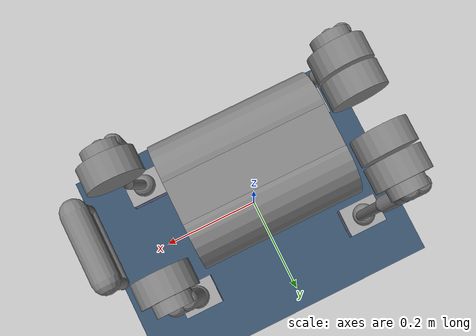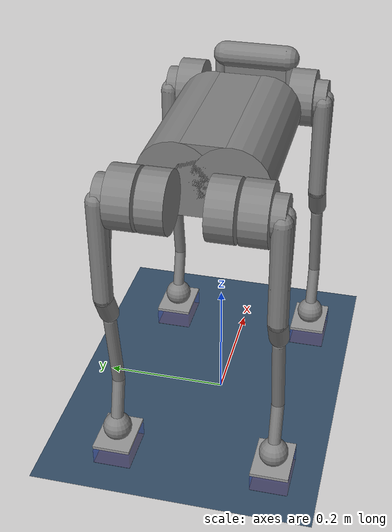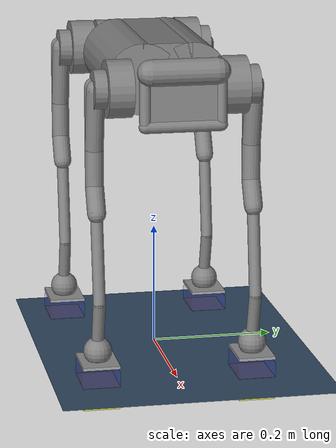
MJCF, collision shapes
<?xml version='1.0' encoding='utf-8'?>
<mujoco model="go1">
  <compiler angle="radian" meshdir="assets" autolimits="true" />

  <option timestep="0.002" solver="PGS" iterations="50" />

  <default>
    <default class="go1">
      <!-- global defaults -->
      <geom friction="0.6 0.01 0.001" margin="0.001" condim="1" />
      <joint axis="0 1 0" damping="2" armature="0.01" frictionloss="0.2" />
      <!-- slightly softer while stabilizing -->
      <position kp="70" forcerange="-23.7 23.7" />

      <!-- abduction/hip/knee joint ranges -->
      <default class="abduction">
        <joint axis="1 0 0" damping="1" range="-0.863 0.863" />
        <position ctrlrange="-0.863 0.863" />
      </default>
      <default class="hip">
        <joint range="-0.686 4.501" />
        <position ctrlrange="-0.686 4.501" />
      </default>
      <default class="knee">
        <joint range="-2.818 -0.888" />
        <position forcerange="-35.55 35.55" ctrlrange="-2.818 -0.888" />
      </default>

      <!-- purely visual meshes: never collide -->
      <default class="visual">
        <geom type="mesh" contype="0" conaffinity="0" group="2" material="dark" />
      </default>

      <!-- collision templates; we will explicitly disable collisions for legs/hips below -->
      <default class="collision">
        <geom group="3" type="capsule" />
        <!-- hip cylinders (set to NO COLLISION) -->
        <default class="hip_left1">
          <geom size="0.046 0.02" pos="0 0.045 0" quat="1 1 0 0" type="cylinder" contype="0" conaffinity="0"/>
        </default>
        <default class="hip_left2">
          <geom size="0.031 0.02" pos="0 0.065 0" quat="1 1 0 0" type="cylinder" contype="0" conaffinity="0"/>
        </default>
        <default class="hip_left3">
          <geom size="0.046 0.02" quat="1 1 0 0" type="cylinder" contype="0" conaffinity="0"/>
        </default>
        <default class="hip_right1">
          <geom size="0.046 0.02" pos="0 -0.045 0" quat="1 1 0 0" type="cylinder" contype="0" conaffinity="0"/>
        </default>
        <default class="hip_right2">
          <geom size="0.031 0.02" pos="0 -0.065 0" quat="1 1 0 0" type="cylinder" contype="0" conaffinity="0"/>
        </default>
        <default class="hip_right3">
          <geom size="0.046 0.02" quat="1 1 0 0" type="cylinder" contype="0" conaffinity="0"/>
        </default>

        <!-- thigh and calf capsules (set to NO COLLISION) -->
        <default class="thigh1">
          <geom size="0.015" fromto="-0.02 0 0 -0.02 0 -0.16" contype="0" conaffinity="0"/>
        </default>
        <default class="thigh2">
          <geom size="0.015" fromto="0 0 0 -0.02 0 -0.1" contype="0" conaffinity="0"/>
        </default>
        <default class="thigh3">
          <geom size="0.015" fromto="-0.02 0 -0.16 0 0 -0.2" contype="0" conaffinity="0"/>
        </default>
        <default class="calf1">
          <geom size="0.01" fromto="0 0 0 0.02 0 -0.13" contype="0" conaffinity="0"/>
        </default>
        <default class="calf2">
          <geom size="0.01" fromto="0.02 0 -0.13 0 0 -0.2" contype="0" conaffinity="0"/>
        </default>

        <!-- legacy foot spheres (disable, shoes handle contact) -->
        <default class="foot">
          <geom type="sphere" size="0.023" pos="0 0 -0.213" priority="1"
                solimp="0.015 1 0.023" condim="6" friction="0.8 0.02 0.01"
                contype="0" conaffinity="0"/>
        </default>
      </default>
    </default>
  </default>

  <asset>
    <material name="dark" rgba="0.2 0.2 0.2 1" />
    <mesh class="go1" file="trunk.stl" />
    <mesh class="go1" file="hip.stl" />
    <mesh class="go1" file="thigh_mirror.stl" />
    <mesh class="go1" file="calf.stl" />
    <mesh class="go1" file="thigh.stl" />
  </asset>

  <worldbody>
    <geom name="floor" type="plane" size="10 10 0.1" rgba="0.2 0.3 0.4 1"
          friction="1.0 0.005 0.0001" />
    <light name="spotlight" mode="targetbodycom" target="trunk" pos="0 -1 2" />

    <body name="trunk" pos="0 0 0.475" childclass="go1">
      <camera name="tracking" mode="trackcom" pos="0 -1 0.8" xyaxes="1 0 0 0 1 1" />
      <site name="head" pos="0.3 0 0" rgba="1 0 0 1" size="0.02" group="5" />
      <inertial pos="0.0223 0.002 -0.0005"
                quat="-0.00342088 0.705204 0.000106698 0.708996"
                mass="5.204" diaginertia="0.0716565 0.0630105 0.0168101" />
      <freejoint />
      <geom class="visual" mesh="trunk" />

      <!-- trunk helper collision geoms: DISABLED to avoid ground scuffs -->
      <geom class="collision" size="0.125 0.04 0.057" type="box" contype="0" conaffinity="0"/>
      <geom class="collision" quat="1 0 1 0" pos="0 -0.04 0" size="0.058 0.125" type="cylinder" contype="0" conaffinity="0"/>
      <geom class="collision" quat="1 0 1 0" pos="0 +0.04 0" size="0.058 0.125" type="cylinder" contype="0" conaffinity="0"/>
      <geom class="collision" pos="0.25 0 0" size="0.005 0.06 0.05" type="box" contype="0" conaffinity="0"/>
      <geom class="collision" pos="0.25 0.06 -0.01" size="0.009 0.035" contype="0" conaffinity="0"/>
      <geom class="collision" pos="0.25 -0.06 -0.01" size="0.009 0.035" contype="0" conaffinity="0"/>
      <geom class="collision" pos="0.25 0 -0.05" size="0.01 0.06" quat="1 1 0 0" contype="0" conaffinity="0"/>
      <geom class="collision" pos="0.255 0 0.0355" size="0.021 0.052" quat="1 1 0 0" contype="0" conaffinity="0"/>
      <site name="imu" pos="0 0 0" />

      <!-- =================== FRONT RIGHT =================== -->
      <body name="FR_hip" pos="0.1881 -0.04675 0">
        <inertial pos="-0.0049166 0.00762615 -8.865e-05"
                  quat="0.507341 0.514169 0.495027 0.482891"
                  mass="0.68" diaginertia="0.000734064 0.000468438 0.000398719" />
        <joint class="abduction" name="FR_hip_joint" />
        <geom class="visual" mesh="hip" quat="1 0 0 0" />
        <geom class="hip_right1" />
        <geom class="hip_right2" />

        <body name="FR_thigh" pos="0 -0.08 0">
          <inertial pos="-0.00304722 0.019315 -0.0305004"
                    quat="0.65243 -0.0272313 0.0775126 0.753383"
                    mass="1.009" diaginertia="0.00478717 0.00460903 0.000709268" />
          <joint class="hip" name="FR_thigh_joint" />
          <geom class="visual" mesh="thigh_mirror" />
          <geom class="thigh1" />
          <geom class="thigh2" />
          <geom class="thigh3" />

          <body name="FR_calf" pos="0 0 -0.213">
            <inertial pos="0.00429862 0.000976676 -0.146197"
                      quat="0.691246 0.00357467 0.00511118 0.722592"
                      mass="0.195862" diaginertia="0.00149767 0.00148468 3.58427e-05" />
            <joint class="knee" name="FR_calf_joint" />
            <geom class="visual" mesh="calf" />
            <geom class="calf1" />
            <geom class="calf2" />
            <geom name="FR" class="foot" />
            <site name="FR_1" pos="0 0 -0.213" type="sphere" size="0.023" group="5" />

            <body name="FR_shoe" pos="0.0000 0.0000 -0.213">
              <body pos="0 0 0.005">
                <joint name="FR_tpu_slide" type="slide" axis="0 0 1"
                       range="-0.002 0" stiffness="5000" damping="80" />
                <geom name="FR_tpu" type="box" size="0.04 0.03 0.0025" pos="0 0 -0.0225"
                      rgba="0.6 0.6 0.6 1" friction="0.9 0.01 0.001"
                      solimp="0.95 0.99 0.001" solref="0.005 1" />
              </body>
              <!-- air-gap: visual only -->
              <geom name="FR_airgap" type="box" size="0.04 0.03 0.0125" pos="0 0 -0.0375"
                    rgba="0.2 0.2 1 0.1" contype="0" conaffinity="0" />
              <!-- FOAM: low-stiff pad that MAY contact -->
              <geom name="FR_foam" type="box" size="0.04 0.03 0.012" pos="0 0 -0.0615"
                    rgba="0.3 0.3 0.3 1" friction="0.8 0.005 0.001"
                    solimp="0.93 0.995 0.001" solref="0.006 1" condim="6" />
              <!-- SILICONE: main contact surface -->
              <geom name="FR_silicone" type="box" size="0.04 0.03 0.005" pos="0 0 -0.0815"
                    rgba="0.8 0.8 0.2 1" friction="1.2 0.01 0.002"
                    solimp="0.95 0.99 0.001" solref="0.004 1" condim="6" />
            </body>
          </body>
        </body>
      </body>

      <!-- =================== FRONT LEFT =================== -->
      <body name="FL_hip" pos="0.1881 0.04675 0">
        <inertial pos="-0.0049166 -0.00762615 -8.865e-05"
                  quat="0.482891 0.495027 0.514169 0.507341"
                  mass="0.68" diaginertia="0.000734064 0.000468438 0.000398719" />
        <joint class="abduction" name="FL_hip_joint" />
        <geom class="visual" mesh="hip" />
        <geom class="hip_left1" />
        <geom class="hip_left2" />

        <body name="FL_thigh" pos="0 0.08 0">
          <inertial pos="-0.00304722 -0.019315 -0.0305004"
                    quat="0.753383 0.0775126 -0.0272313 0.65243"
                    mass="1.009" diaginertia="0.00478717 0.00460903 0.000709268" />
          <joint class="hip" name="FL_thigh_joint" />
          <geom class="visual" mesh="thigh" />
          <geom class="thigh1" />
          <geom class="thigh2" />
          <geom class="thigh3" />

          <body name="FL_calf" pos="0 0 -0.213">
            <inertial pos="0.00429862 0.000976676 -0.146197"
                      quat="0.691246 0.00357467 0.00511118 0.722592"
                      mass="0.195862" diaginertia="0.00149767 0.00148468 3.58427e-05" />
            <joint class="knee" name="FL_calf_joint" />
            <geom class="visual" mesh="calf" />
            <geom class="calf1" />
            <geom class="calf2" />
            <geom name="FL" class="foot" />
            <site name="FL_1" pos="0 0 -0.213" type="sphere" size="0.023" group="5" />

            <body name="FL_shoe" pos="0.0000 0.0000 -0.213">
              <body pos="0 0 0.005">
                <joint name="FL_tpu_slide" type="slide" axis="0 0 1"
                       range="-0.002 0" stiffness="5000" damping="80" />
                <geom name="FL_tpu" type="box" size="0.04 0.03 0.0025" pos="0 0 -0.0225"
                      rgba="0.6 0.6 0.6 1" friction="0.9 0.01 0.001"
                      solimp="0.95 0.99 0.001" solref="0.005 1" />
              </body>
              <geom name="FL_airgap" type="box" size="0.04 0.03 0.0125" pos="0 0 -0.0375"
                    rgba="0.2 0.2 1 0.1" contype="0" conaffinity="0" />
              <geom name="FL_foam" type="box" size="0.04 0.03 0.012" pos="0 0 -0.0615"
                    rgba="0.3 0.3 0.3 1" friction="0.8 0.005 0.001"
                    solimp="0.93 0.995 0.001" solref="0.006 1" condim="6" />
              <geom name="FL_silicone" type="box" size="0.04 0.03 0.005" pos="0 0 -0.0815"
                    rgba="0.8 0.8 0.2 1" friction="1.2 0.01 0.002"
                    solimp="0.95 0.99 0.001" solref="0.004 1" condim="6" />
            </body>
          </body>
        </body>
      </body>

      <!-- =================== REAR RIGHT =================== -->
      <body name="RR_hip" pos="-0.1881 -0.04675 0">
        <inertial pos="0.0049166 0.00762615 -8.865e-05"
                  quat="0.495027 0.482891 0.507341 0.514169"
                  mass="0.68" diaginertia="0.000734064 0.000468438 0.000398719" />
        <joint class="abduction" name="RR_hip_joint" />
        <geom class="visual" quat="0 0 0 -1" mesh="hip" />
        <geom class="hip_right1" />
        <geom class="hip_right2" />
        <geom class="hip_right3" />

        <body name="RR_thigh" pos="0 -0.08 0">
          <inertial pos="-0.00304722 0.019315 -0.0305004"
                    quat="0.65243 -0.0272313 0.0775126 0.753383"
                    mass="1.009" diaginertia="0.00478717 0.00460903 0.000709268" />
          <joint class="hip" name="RR_thigh_joint" />
          <geom class="visual" mesh="thigh_mirror" />
          <geom class="thigh1" />
          <geom class="thigh2" />
          <geom class="thigh3" />

          <body name="RR_calf" pos="0 0 -0.213">
            <inertial pos="0.00429862 0.000976676 -0.146197"
                      quat="0.691246 0.00357467 0.00511118 0.722592"
                      mass="0.195862" diaginertia="0.00149767 0.00148468 3.58427e-05" />
            <joint class="knee" name="RR_calf_joint" />
            <geom class="visual" mesh="calf" />
            <geom class="calf1" />
            <geom class="calf2" />
            <geom name="RR" class="foot" />
            <site name="RR_1" pos="0 0 -0.213" type="sphere" size="0.023" group="5" />

            <body name="RR_shoe" pos="0.0000 0.0000 -0.213">
              <body pos="0 0 0.005">
                <joint name="RR_tpu_slide" type="slide" axis="0 0 1"
                       range="-0.002 0" stiffness="5000" damping="80" />
                <geom name="RR_tpu" type="box" size="0.04 0.03 0.0025" pos="0 0 -0.0225"
                      rgba="0.6 0.6 0.6 1" friction="0.9 0.01 0.001"
                      solimp="0.95 0.99 0.001" solref="0.005 1" />
              </body>
              <geom name="RR_airgap" type="box" size="0.04 0.03 0.0125" pos="0 0 -0.0375"
                    rgba="0.2 0.2 1 0.1" contype="0" conaffinity="0" />
              <geom name="RR_foam" type="box" size="0.04 0.03 0.012" pos="0 0 -0.0615"
                    rgba="0.3 0.3 0.3 1" friction="0.8 0.005 0.001"
                    solimp="0.93 0.995 0.001" solref="0.006 1" condim="6" />
              <geom name="RR_silicone" type="box" size="0.04 0.03 0.005" pos="0 0 -0.0815"
                    rgba="0.8 0.8 0.2 1" friction="1.2 0.01 0.002"
                    solimp="0.95 0.99 0.001" solref="0.004 1" condim="6" />
            </body>
          </body>
        </body>
      </body>

      <!-- =================== REAR LEFT =================== -->
      <body name="RL_hip" pos="-0.1881 0.04675 0">
        <inertial pos="0.0049166 -0.00762615 -8.865e-05"
                  quat="0.514169 0.507341 0.482891 0.495027"
                  mass="0.68" diaginertia="0.000734064 0.000468438 0.000398719" />
        <joint class="abduction" name="RL_hip_joint" />
        <geom class="visual" quat="0 0 1 0" mesh="hip" />
        <geom class="hip_left1" />
        <geom class="hip_left2" />
        <geom class="hip_left3" />

        <body name="RL_thigh" pos="0 0.08 0">
          <inertial pos="-0.00304722 -0.019315 -0.0305004"
                    quat="0.753383 0.0775126 -0.0272313 0.65243"
                    mass="1.009" diaginertia="0.00478717 0.00460903 0.000709268" />
          <joint class="hip" name="RL_thigh_joint" />
          <geom class="visual" mesh="thigh" />
          <geom class="thigh1" />
          <geom class="thigh2" />
          <geom class="thigh3" />

          <body name="RL_calf" pos="0 0 -0.213">
            <inertial pos="0.00429862 0.000976676 -0.146197"
                      quat="0.691246 0.00357467 0.00511118 0.722592"
                      mass="0.195862" diaginertia="0.00149767 0.00148468 3.58427e-05" />
            <joint class="knee" name="RL_calf_joint" />
            <geom class="visual" mesh="calf" />
            <geom class="calf1" />
            <geom class="calf2" />
            <geom name="RL" class="foot" />
            <site name="RL_1" pos="0 0 -0.213" type="sphere" size="0.023" group="5" />

            <body name="RL_shoe" pos="0.0000 0.0000 -0.213">
              <body pos="0 0 0.005">
                <joint name="RL_tpu_slide" type="slide" axis="0 0 1"
                       range="-0.002 0" stiffness="5000" damping="80" />
                <geom name="RL_tpu" type="box" size="0.04 0.03 0.0025" pos="0 0 -0.0225"
                      rgba="0.6 0.6 0.6 1" friction="0.9 0.01 0.001"
                      solimp="0.95 0.99 0.001" solref="0.005 1" />
              </body>
              <geom name="RL_airgap" type="box" size="0.04 0.03 0.0125" pos="0 0 -0.0375"
                    rgba="0.2 0.2 1 0.1" contype="0" conaffinity="0" />
              <geom name="RL_foam" type="box" size="0.04 0.03 0.012" pos="0 0 -0.0615"
                    rgba="0.3 0.3 0.3 1" friction="0.8 0.005 0.001"
                    solimp="0.93 0.995 0.001" solref="0.006 1" condim="6" />
              <geom name="RL_silicone" type="box" size="0.04 0.03 0.005" pos="0 0 -0.0815"
                    rgba="0.8 0.8 0.2 1" friction="1.2 0.01 0.002"
                    solimp="0.95 0.99 0.001" solref="0.004 1" condim="6" />
            </body>
          </body>
        </body>
      </body>

    </body>
  </worldbody>

  <actuator>
    <position class="abduction" name="FR_hip_1" joint="FR_hip_joint" />
    <position class="hip" name="FR_thigh_1" joint="FR_thigh_joint" />
    <position class="knee" name="FR_calf_1" joint="FR_calf_joint" />
    <position class="abduction" name="FL_hip_1" joint="FL_hip_joint" />
    <position class="hip" name="FL_thigh_1" joint="FL_thigh_joint" />
    <position class="knee" name="FL_calf_1" joint="FL_calf_joint" />
    <position class="abduction" name="RR_hip_1" joint="RR_hip_joint" />
    <position class="hip" name="RR_thigh_1" joint="RR_thigh_joint" />
    <position class="knee" name="RR_calf_1" joint="RR_calf_joint" />
    <position class="abduction" name="RL_hip_1" joint="RL_hip_joint" />
    <position class="hip" name="RL_thigh_1" joint="RL_thigh_joint" />
    <position class="knee" name="RL_calf_1" joint="RL_calf_joint" />
  </actuator>

  <keyframe>
    <key name="home"
         qpos="0 0 0.475 1 0 0 0
               0 0.7 -1.4
               0 0.7 -1.4
               0 0.7 -1.4
               0 0.7 -1.4
               0 0 0 0"
         ctrl="0 0.7 -1.4  0 0.7 -1.4  0 0.7 -1.4  0 0.7 -1.4" />
  </keyframe>
</mujoco>
